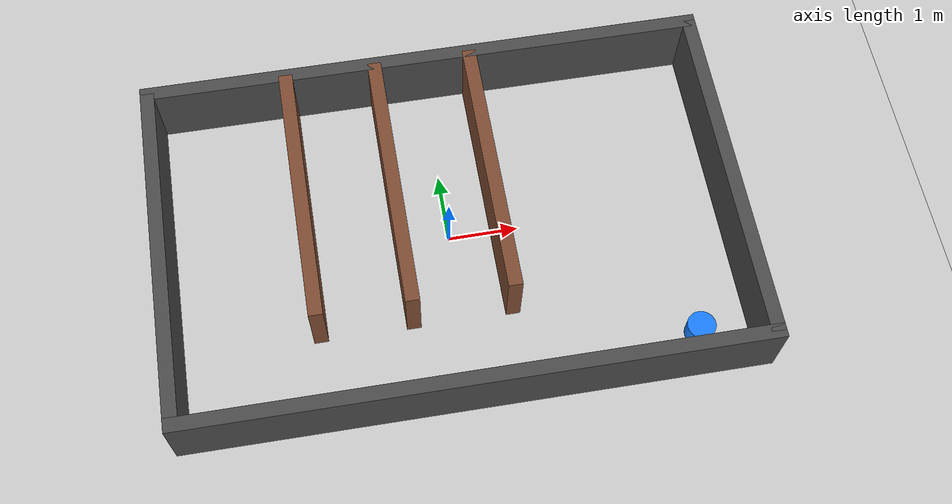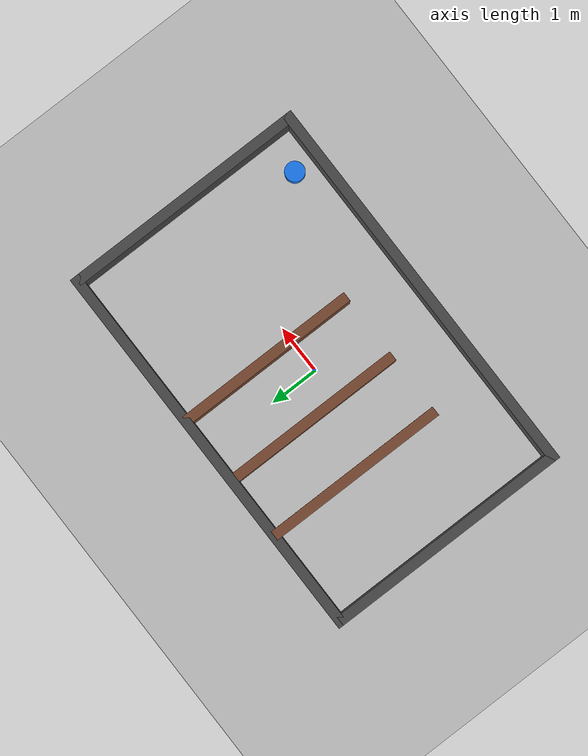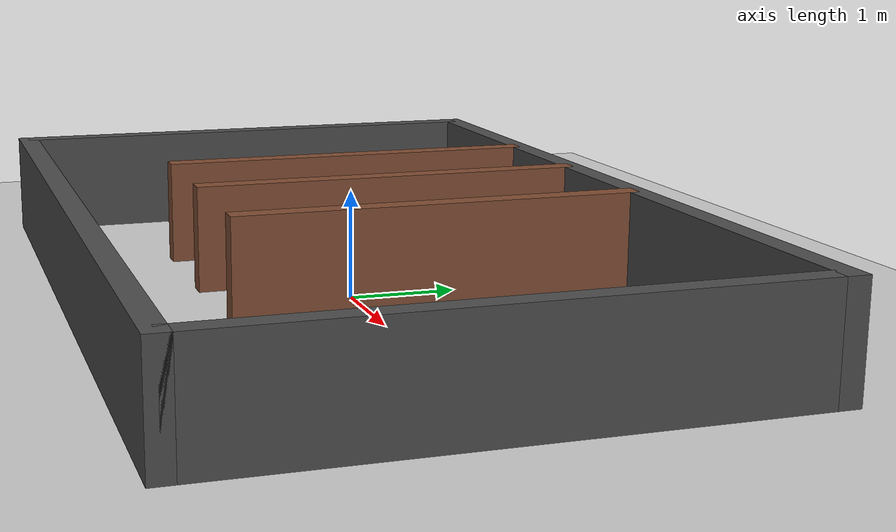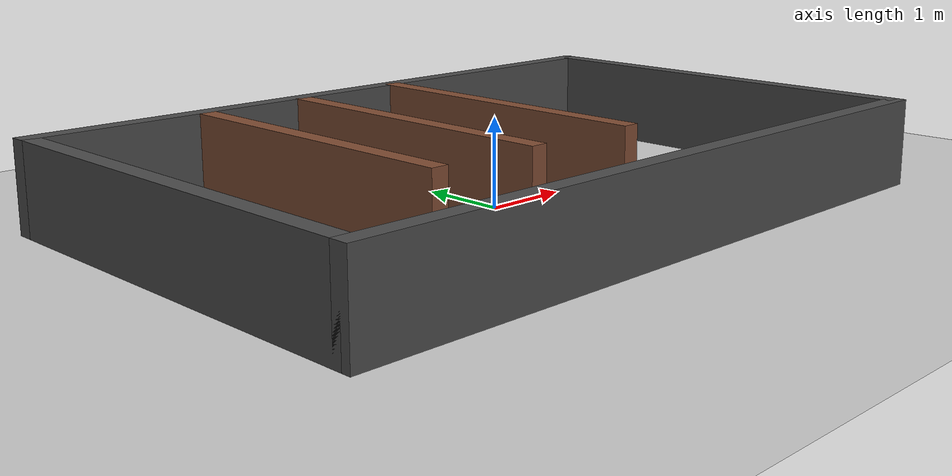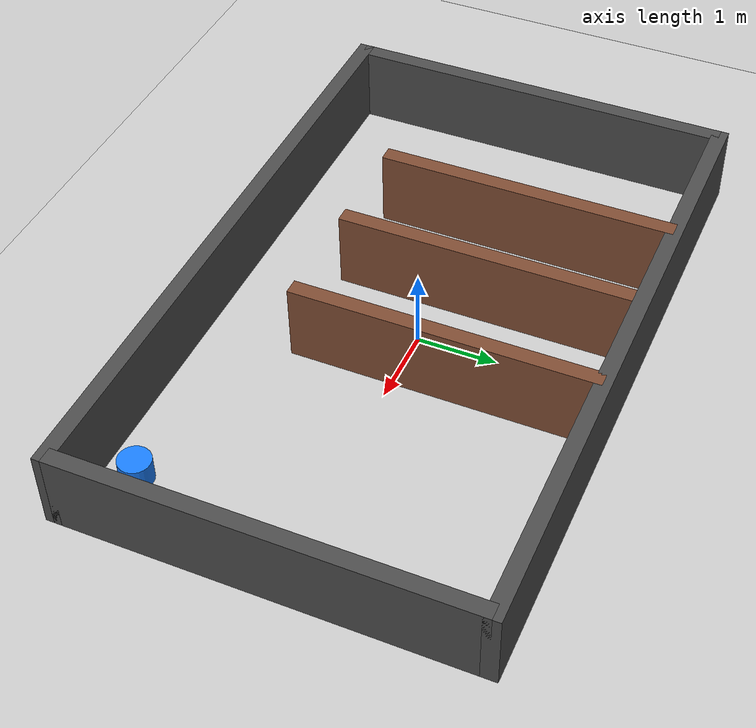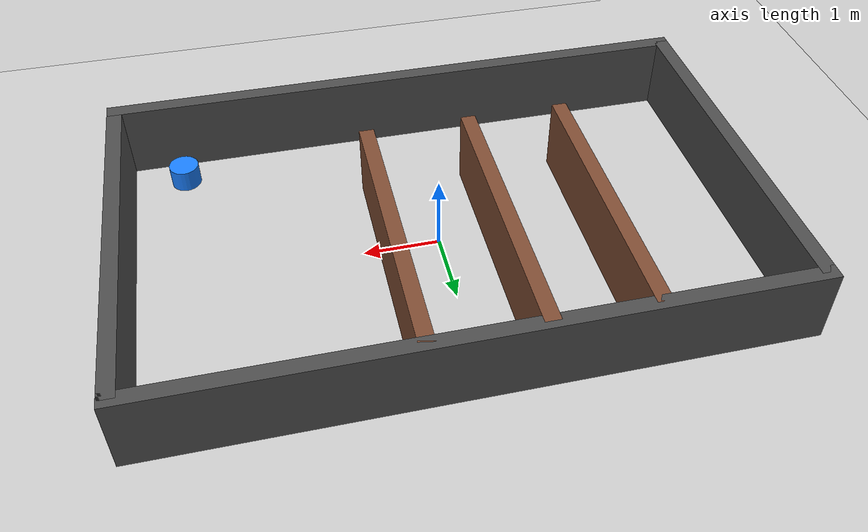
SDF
<?xml version="1.0"?>
<sdf version="1.6">
  <world name="custom_maze_world">
    <!-- Physics Configuration -->
    <physics type="ode">
      <real_time_update_rate>1000.0</real_time_update_rate>
      <max_step_size>0.001</max_step_size>
      <real_time_factor>1</real_time_factor>
      <ode>
        <solver>
          <type>quick</type>
          <iters>150</iters>
          <precon_iters>0</precon_iters>
          <sor>1.400000</sor>
          <use_dynamic_moi_rescaling>1</use_dynamic_moi_rescaling>
        </solver>
        <constraints>
          <cfm>0.00001</cfm>
          <erp>0.2</erp>
          <contact_max_correcting_vel>2000.000000</contact_max_correcting_vel>
          <contact_surface_layer>0.01000</contact_surface_layer>
        </constraints>
      </ode>
    </physics>

    <!-- Gazebo Plugins -->
    <plugin
      filename="gz-sim-physics-system"
      name="gz::sim::systems::Physics">
    </plugin>
    <plugin
      filename="gz-sim-user-commands-system"
      name="gz::sim::systems::UserCommands">
    </plugin>
    <plugin
      filename="gz-sim-scene-broadcaster-system"
      name="gz::sim::systems::SceneBroadcaster">
    </plugin>
    <plugin
      filename="gz-sim-sensors-system"
      name="gz::sim::systems::Sensors">
      <render_engine>ogre2</render_engine>
    </plugin>
    <plugin
      filename="gz-sim-imu-system"
      name="gz::sim::systems::Imu">
    </plugin>

    <!-- Scene Settings -->
    <scene>
      <ambient>0.5 0.5 0.5 1</ambient>
      <background>0.8 0.8 0.8 1</background>
      <shadows>true</shadows>
    </scene>

    <!-- GUI Camera - Top-down view for maze -->
    <gui fullscreen='0'>
      <camera name='user_camera'>
        <pose>0 -1 10.0 0 1.5708 0</pose>
        <view_controller>orbit</view_controller>
        <projection_type>perspective</projection_type>
      </camera>
    </gui>

    <!-- Ground Plane -->
    <include>
      <uri>https://fuel.gazebosim.org/1.0/OpenRobotics/models/Ground Plane</uri>
    </include>

    <!-- Sun (Lighting) -->
    <include>
      <uri>https://fuel.gazebosim.org/1.0/OpenRobotics/models/Sun</uri>
    </include>

    <!-- OUTER BOUNDARY WALLS -->
    <!-- The main rectangle is 8m wide x 5m tall -->

    <!-- North Wall (Top) -->
    <model name="wall_north">
      <static>true</static>
      <pose>0 2.5 0.5 0 0 0</pose>
      <link name="link">
        <collision name="collision">
          <geometry>
            <box>
              <size>8.2 0.2 1</size>
            </box>
          </geometry>
        </collision>
        <visual name="visual">
          <geometry>
            <box>
              <size>8.2 0.2 1</size>
            </box>
          </geometry>
          <material>
            <ambient>0.3 0.3 0.3 1</ambient>
            <diffuse>0.3 0.3 0.3 1</diffuse>
            <specular>0.1 0.1 0.1 1</specular>
          </material>
        </visual>
      </link>
    </model>

    <!-- South Wall (Bottom) -->
    <model name="wall_south">
      <static>true</static>
      <pose>0 -2.5 0.5 0 0 0</pose>
      <link name="link">
        <collision name="collision">
          <geometry>
            <box>
              <size>8.2 0.2 1</size>
            </box>
          </geometry>
        </collision>
        <visual name="visual">
          <geometry>
            <box>
              <size>8.2 0.2 1</size>
            </box>
          </geometry>
          <material>
            <ambient>0.3 0.3 0.3 1</ambient>
            <diffuse>0.3 0.3 0.3 1</diffuse>
            <specular>0.1 0.1 0.1 1</specular>
          </material>
        </visual>
      </link>
    </model>

    <!-- East Wall (Right) -->
    <model name="wall_east">
      <static>true</static>
      <pose>4.0 0 0.5 0 0 0</pose>
      <link name="link">
        <collision name="collision">
          <geometry>
            <box>
              <size>0.2 5.0 1</size>
            </box>
          </geometry>
        </collision>
        <visual name="visual">
          <geometry>
            <box>
              <size>0.2 5.0 1</size>
            </box>
          </geometry>
          <material>
            <ambient>0.3 0.3 0.3 1</ambient>
            <diffuse>0.3 0.3 0.3 1</diffuse>
            <specular>0.1 0.1 0.1 1</specular>
          </material>
        </visual>
      </link>
    </model>

    <!-- West Wall (Left) -->
    <model name="wall_west">
      <static>true</static>
      <pose>-4.0 0 0.5 0 0 0</pose>
      <link name="link">
        <collision name="collision">
          <geometry>
            <box>
              <size>0.2 5.0 1</size>
            </box>
          </geometry>
        </collision>
        <visual name="visual">
          <geometry>
            <box>
              <size>0.2 5.0 1</size>
            </box>
          </geometry>
          <material>
            <ambient>0.3 0.3 0.3 1</ambient>
            <diffuse>0.3 0.3 0.3 1</diffuse>
            <specular>0.1 0.1 0.1 1</specular>
          </material>
        </visual>
      </link>
    </model>

    <!-- INTERNAL VERTICAL WALLS -->
    <!-- 3 vertical walls that extend from top but leave gap at bottom -->
    <!-- Each wall extends from top (y=2.5) down to (y=-1.3), leaving 1.2m gap at bottom -->

    <!-- Internal Wall 1 (Left) -->
    <model name="internal_wall_1">
      <static>true</static>
      <pose>-2.0 0.6 0.5 0 0 0</pose>
      <link name="link">
        <collision name="collision">
          <geometry>
            <box>
              <size>0.2 3.8 1</size>
            </box>
          </geometry>
        </collision>
        <visual name="visual">
          <geometry>
            <box>
              <size>0.2 3.8 1</size>
            </box>
          </geometry>
          <material>
            <ambient>0.5 0.3 0.2 1</ambient>
            <diffuse>0.5 0.3 0.2 1</diffuse>
            <specular>0.2 0.2 0.2 1</specular>
          </material>
        </visual>
      </link>
    </model>

    <!-- Internal Wall 2 (Center-Left) -->
    <model name="internal_wall_2">
      <static>true</static>
      <pose>-0.7 0.6 0.5 0 0 0</pose>
      <link name="link">
        <collision name="collision">
          <geometry>
            <box>
              <size>0.2 3.8 1</size>
            </box>
          </geometry>
        </collision>
        <visual name="visual">
          <geometry>
            <box>
              <size>0.2 3.8 1</size>
            </box>
          </geometry>
          <material>
            <ambient>0.5 0.3 0.2 1</ambient>
            <diffuse>0.5 0.3 0.2 1</diffuse>
            <specular>0.2 0.2 0.2 1</specular>
          </material>
        </visual>
      </link>
    </model>

    <!-- Internal Wall 3 (Center-Right) -->
    <model name="internal_wall_3">
      <static>true</static>
      <pose>0.7 0.6 0.5 0 0 0</pose>
      <link name="link">
        <collision name="collision">
          <geometry>
            <box>
              <size>0.2 3.8 1</size>
            </box>
          </geometry>
        </collision>
        <visual name="visual">
          <geometry>
            <box>
              <size>0.2 3.8 1</size>
            </box>
          </geometry>
          <material>
            <ambient>0.5 0.3 0.2 1</ambient>
            <diffuse>0.5 0.3 0.2 1</diffuse>
            <specular>0.2 0.2 0.2 1</specular>
          </material>
        </visual>
      </link>
    </model>

    <!-- Start marker (Blue cylinder at bottom-right) -->
    <model name="start_marker">
      <static>true</static>
      <pose>3.2 -2.0 0.15 0 0 0</pose>
      <link name="link">
        <collision name="collision">
          <geometry>
            <cylinder>
              <radius>0.20</radius>
              <length>0.3</length>
            </cylinder>
          </geometry>
        </collision>
        <visual name="visual">
          <geometry>
            <cylinder>
              <radius>0.20</radius>
              <length>0.3</length>
            </cylinder>
          </geometry>
          <material>
            <ambient>0.1 0.5 1.0 1</ambient>
            <diffuse>0.1 0.5 1.0 1</diffuse>
            <specular>0.8 0.8 0.8 1</specular>
            <emissive>0.0 0.1 0.3 1</emissive>
          </material>
        </visual>
      </link>
    </model>

  </world>
</sdf>
